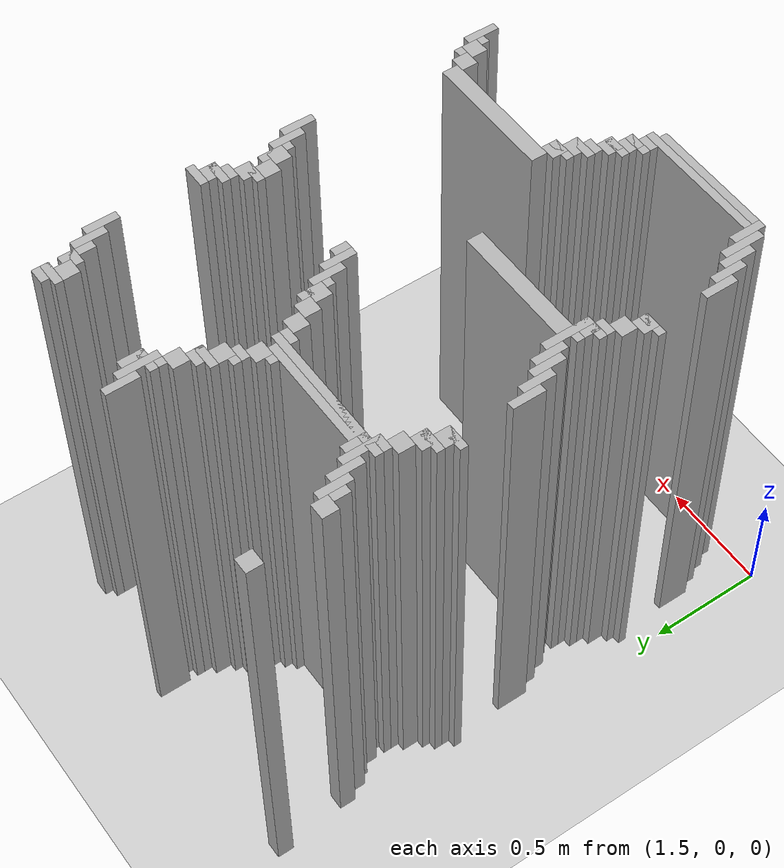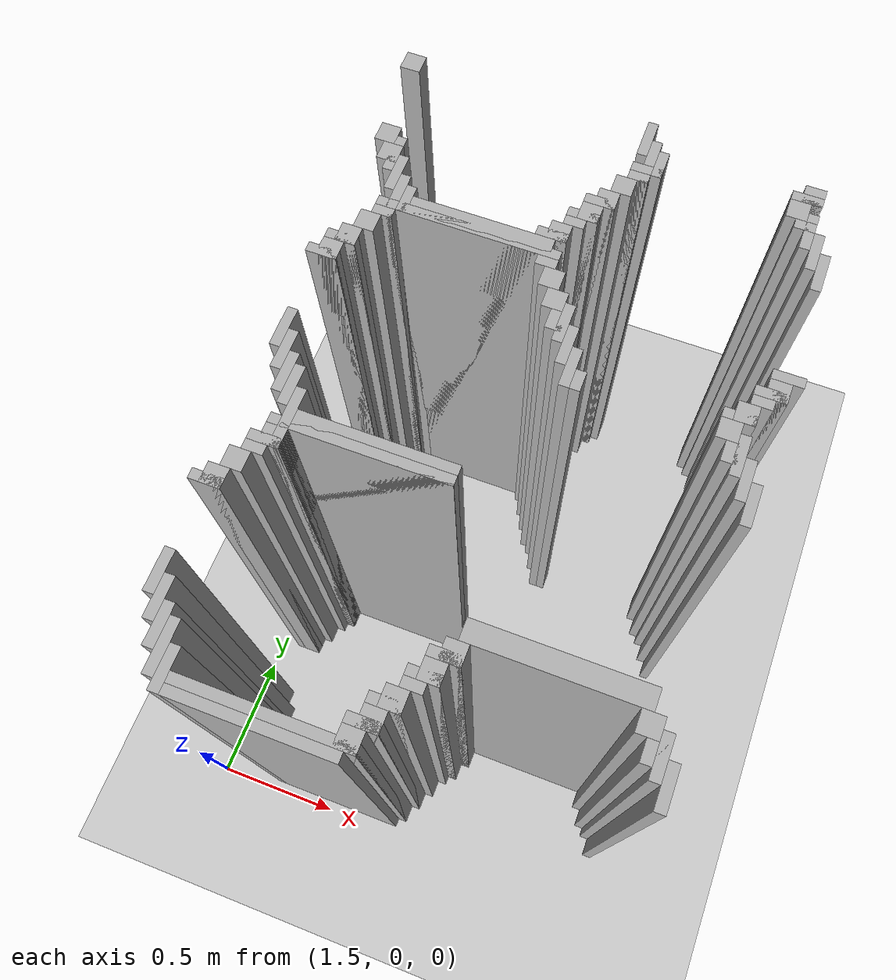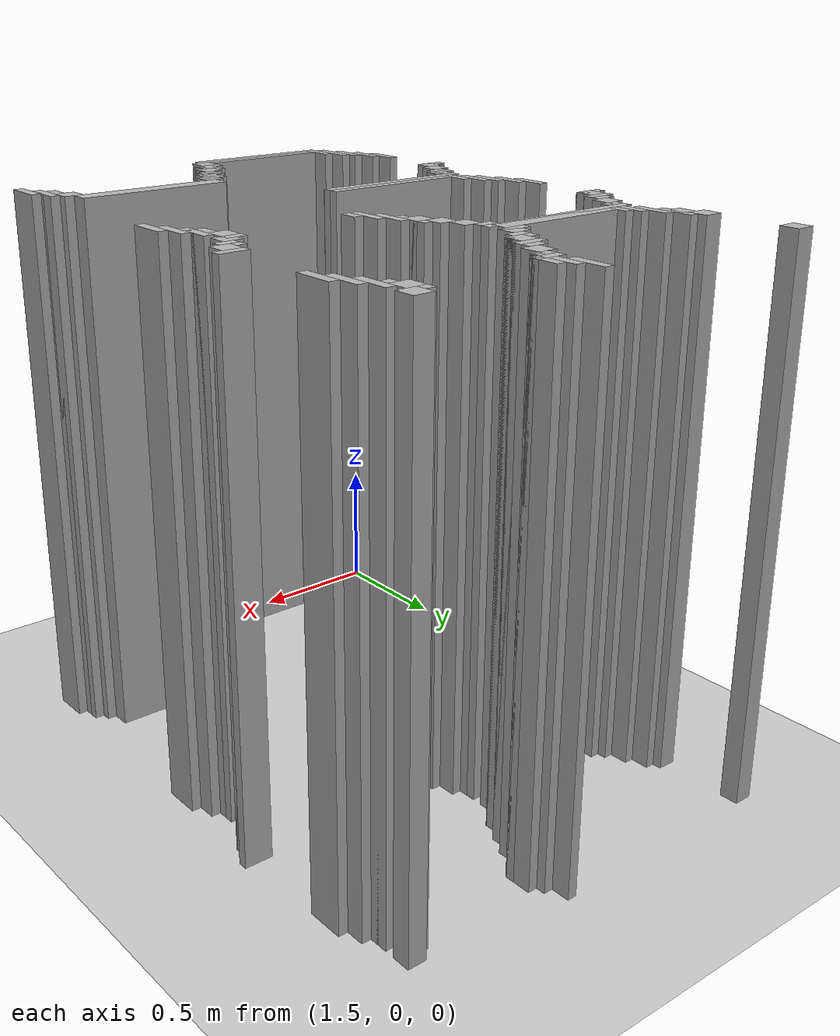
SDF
<sdf version="1.6">
 <world name="slam_world">
  <model name="ground_plane">
   <static>true</static>
   <link name="link">
    <collision name="collision">
     <geometry><plane><normal>0 0 1</normal><size>100 100</size></plane></geometry>
    </collision>
    <visual name="visual">
     <geometry><plane><normal>0 0 1</normal><size>100 100</size></plane></geometry>
     <material>
      <ambient>0.8 0.8 0.8 1</ambient>
      <diffuse>0.8 0.8 0.8 1</diffuse>
      <specular>0.8 0.8 0.8 1</specular>
     </material>
    </visual>
   </link>
  </model>
  <model name="wall_4967">
   <static>true</static>
   <pose>1.6009280742459395 2.296983758700696 1.0 0 0 0</pose>
   <link name="link">
    <collision name="collision">
     <geometry><box><size>0.06960556844547564 0.06960556844547564 2.0</size></box></geometry>
    </collision>
    <visual name="visual">
     <geometry><box><size>0.06960556844547564 0.06960556844547564 2.0</size></box></geometry>
     <material><ambient>0.5 0.5 0.5 1</ambient><diffuse>0.7 0.7 0.7 1</diffuse></material>
    </visual>
   </link>
  </model>
  <model name="wall_4968">
   <static>true</static>
   <pose>2.453596287703016 2.262180974477958 1.0 0 0 0</pose>
   <link name="link">
    <collision name="collision">
     <geometry><box><size>0.03480278422273782 0.13921113689095127 2.0</size></box></geometry>
    </collision>
    <visual name="visual">
     <geometry><box><size>0.03480278422273782 0.13921113689095127 2.0</size></box></geometry>
     <material><ambient>0.5 0.5 0.5 1</ambient><diffuse>0.7 0.7 0.7 1</diffuse></material>
    </visual>
   </link>
  </model>
  <model name="wall_4981">
   <static>true</static>
   <pose>2.488399071925754 2.1751740139211138 1.0 0 0 0</pose>
   <link name="link">
    <collision name="collision">
     <geometry><box><size>0.03480278422273782 0.17401392111368907 2.0</size></box></geometry>
    </collision>
    <visual name="visual">
     <geometry><box><size>0.03480278422273782 0.17401392111368907 2.0</size></box></geometry>
     <material><ambient>0.5 0.5 0.5 1</ambient><diffuse>0.7 0.7 0.7 1</diffuse></material>
    </visual>
   </link>
  </model>
  <model name="wall_4982">
   <static>true</static>
   <pose>3.02784222737819 2.2273781902552203 1.0 0 0 0</pose>
   <link name="link">
    <collision name="collision">
     <geometry><box><size>0.06960556844547564 0.06960556844547564 2.0</size></box></geometry>
    </collision>
    <visual name="visual">
     <geometry><box><size>0.06960556844547564 0.06960556844547564 2.0</size></box></geometry>
     <material><ambient>0.5 0.5 0.5 1</ambient><diffuse>0.7 0.7 0.7 1</diffuse></material>
    </visual>
   </link>
  </model>
  <model name="wall_4994">
   <static>true</static>
   <pose>2.523201856148492 2.1751740139211138 1.0 0 0 0</pose>
   <link name="link">
    <collision name="collision">
     <geometry><box><size>0.03480278422273782 0.10440835266821345 2.0</size></box></geometry>
    </collision>
    <visual name="visual">
     <geometry><box><size>0.03480278422273782 0.10440835266821345 2.0</size></box></geometry>
     <material><ambient>0.5 0.5 0.5 1</ambient><diffuse>0.7 0.7 0.7 1</diffuse></material>
    </visual>
   </link>
  </model>
  <model name="wall_4995">
   <static>true</static>
   <pose>3.010440835266821 2.2099767981438516 1.0 0 0 0</pose>
   <link name="link">
    <collision name="collision">
     <geometry><box><size>0.10440835266821345 0.03480278422273782 2.0</size></box></geometry>
    </collision>
    <visual name="visual">
     <geometry><box><size>0.10440835266821345 0.03480278422273782 2.0</size></box></geometry>
     <material><ambient>0.5 0.5 0.5 1</ambient><diffuse>0.7 0.7 0.7 1</diffuse></material>
    </visual>
   </link>
  </model>
  <model name="wall_5006">
   <static>true</static>
   <pose>2.9930394431554523 2.1577726218097446 1.0 0 0 0</pose>
   <link name="link">
    <collision name="collision">
     <geometry><box><size>0.06960556844547564 0.06960556844547564 2.0</size></box></geometry>
    </collision>
    <visual name="visual">
     <geometry><box><size>0.06960556844547564 0.06960556844547564 2.0</size></box></geometry>
     <material><ambient>0.5 0.5 0.5 1</ambient><diffuse>0.7 0.7 0.7 1</diffuse></material>
    </visual>
   </link>
  </model>
  <model name="wall_5018">
   <static>true</static>
   <pose>2.488399071925754 2.140371229698376 1.0 0 0 0</pose>
   <link name="link">
    <collision name="collision">
     <geometry><box><size>0.10440835266821345 0.03480278422273782 2.0</size></box></geometry>
    </collision>
    <visual name="visual">
     <geometry><box><size>0.10440835266821345 0.03480278422273782 2.0</size></box></geometry>
     <material><ambient>0.5 0.5 0.5 1</ambient><diffuse>0.7 0.7 0.7 1</diffuse></material>
    </visual>
   </link>
  </model>
  <model name="wall_5019">
   <static>true</static>
   <pose>3.045243619489559 2.088167053364269 1.0 0 0 0</pose>
   <link name="link">
    <collision name="collision">
     <geometry><box><size>0.03480278422273782 0.13921113689095127 2.0</size></box></geometry>
    </collision>
    <visual name="visual">
     <geometry><box><size>0.03480278422273782 0.13921113689095127 2.0</size></box></geometry>
     <material><ambient>0.5 0.5 0.5 1</ambient><diffuse>0.7 0.7 0.7 1</diffuse></material>
    </visual>
   </link>
  </model>
  <model name="wall_5034">
   <static>true</static>
   <pose>2.470997679814385 2.105568445475638 1.0 0 0 0</pose>
   <link name="link">
    <collision name="collision">
     <geometry><box><size>0.06960556844547564 0.03480278422273782 2.0</size></box></geometry>
    </collision>
    <visual name="visual">
     <geometry><box><size>0.06960556844547564 0.03480278422273782 2.0</size></box></geometry>
     <material><ambient>0.5 0.5 0.5 1</ambient><diffuse>0.7 0.7 0.7 1</diffuse></material>
    </visual>
   </link>
  </model>
  <model name="wall_5035">
   <static>true</static>
   <pose>3.02784222737819 2.105568445475638 1.0 0 0 0</pose>
   <link name="link">
    <collision name="collision">
     <geometry><box><size>0.06960556844547564 0.03480278422273782 2.0</size></box></geometry>
    </collision>
    <visual name="visual">
     <geometry><box><size>0.06960556844547564 0.03480278422273782 2.0</size></box></geometry>
     <material><ambient>0.5 0.5 0.5 1</ambient><diffuse>0.7 0.7 0.7 1</diffuse></material>
    </visual>
   </link>
  </model>
  <model name="wall_5047">
   <static>true</static>
   <pose>2.436194895591647 2.053364269141531 1.0 0 0 0</pose>
   <link name="link">
    <collision name="collision">
     <geometry><box><size>0.06960556844547564 0.06960556844547564 2.0</size></box></geometry>
    </collision>
    <visual name="visual">
     <geometry><box><size>0.06960556844547564 0.06960556844547564 2.0</size></box></geometry>
     <material><ambient>0.5 0.5 0.5 1</ambient><diffuse>0.7 0.7 0.7 1</diffuse></material>
    </visual>
   </link>
  </model>
  <model name="wall_5048">
   <static>true</static>
   <pose>3.0800464037122968 2.0185614849187936 1.0 0 0 0</pose>
   <link name="link">
    <collision name="collision">
     <geometry><box><size>0.03480278422273782 0.13921113689095127 2.0</size></box></geometry>
    </collision>
    <visual name="visual">
     <geometry><box><size>0.03480278422273782 0.13921113689095127 2.0</size></box></geometry>
     <material><ambient>0.5 0.5 0.5 1</ambient><diffuse>0.7 0.7 0.7 1</diffuse></material>
    </visual>
   </link>
  </model>
  <model name="wall_5059">
   <static>true</static>
   <pose>1.6357308584686774 1.9837587006960555 1.0 0 0 0</pose>
   <link name="link">
    <collision name="collision">
     <geometry><box><size>0.06960556844547564 0.06960556844547564 2.0</size></box></geometry>
    </collision>
    <visual name="visual">
     <geometry><box><size>0.06960556844547564 0.06960556844547564 2.0</size></box></geometry>
     <material><ambient>0.5 0.5 0.5 1</ambient><diffuse>0.7 0.7 0.7 1</diffuse></material>
    </visual>
   </link>
  </model>
  <model name="wall_5060">
   <static>true</static>
   <pose>2.4013921113689096 1.9837587006960555 1.0 0 0 0</pose>
   <link name="link">
    <collision name="collision">
     <geometry><box><size>0.06960556844547564 0.06960556844547564 2.0</size></box></geometry>
    </collision>
    <visual name="visual">
     <geometry><box><size>0.06960556844547564 0.06960556844547564 2.0</size></box></geometry>
     <material><ambient>0.5 0.5 0.5 1</ambient><diffuse>0.7 0.7 0.7 1</diffuse></material>
    </visual>
   </link>
  </model>
  <model name="wall_5061">
   <static>true</static>
   <pose>3.1148491879350346 1.948955916473318 1.0 0 0 0</pose>
   <link name="link">
    <collision name="collision">
     <geometry><box><size>0.03480278422273782 0.13921113689095127 2.0</size></box></geometry>
    </collision>
    <visual name="visual">
     <geometry><box><size>0.03480278422273782 0.13921113689095127 2.0</size></box></geometry>
     <material><ambient>0.5 0.5 0.5 1</ambient><diffuse>0.7 0.7 0.7 1</diffuse></material>
    </visual>
   </link>
  </model>
  <model name="wall_5072">
   <static>true</static>
   <pose>1.6879350348027842 1.91415313225058 1.0 0 0 0</pose>
   <link name="link">
    <collision name="collision">
     <geometry><box><size>0.03480278422273782 0.13921113689095127 2.0</size></box></geometry>
    </collision>
    <visual name="visual">
     <geometry><box><size>0.03480278422273782 0.13921113689095127 2.0</size></box></geometry>
     <material><ambient>0.5 0.5 0.5 1</ambient><diffuse>0.7 0.7 0.7 1</diffuse></material>
    </visual>
   </link>
  </model>
  <model name="wall_5073">
   <static>true</static>
   <pose>2.3839907192575405 1.9663573085846866 1.0 0 0 0</pose>
   <link name="link">
    <collision name="collision">
     <geometry><box><size>0.10440835266821345 0.03480278422273782 2.0</size></box></geometry>
    </collision>
    <visual name="visual">
     <geometry><box><size>0.10440835266821345 0.03480278422273782 2.0</size></box></geometry>
     <material><ambient>0.5 0.5 0.5 1</ambient><diffuse>0.7 0.7 0.7 1</diffuse></material>
    </visual>
   </link>
  </model>
  <model name="wall_5084">
   <static>true</static>
   <pose>1.6705336426914152 1.91415313225058 1.0 0 0 0</pose>
   <link name="link">
    <collision name="collision">
     <geometry><box><size>0.06960556844547564 0.06960556844547564 2.0</size></box></geometry>
    </collision>
    <visual name="visual">
     <geometry><box><size>0.06960556844547564 0.06960556844547564 2.0</size></box></geometry>
     <material><ambient>0.5 0.5 0.5 1</ambient><diffuse>0.7 0.7 0.7 1</diffuse></material>
    </visual>
   </link>
  </model>
  <model name="wall_5085">
   <static>true</static>
   <pose>2.3665893271461718 1.91415313225058 1.0 0 0 0</pose>
   <link name="link">
    <collision name="collision">
     <geometry><box><size>0.06960556844547564 0.06960556844547564 2.0</size></box></geometry>
    </collision>
    <visual name="visual">
     <geometry><box><size>0.06960556844547564 0.06960556844547564 2.0</size></box></geometry>
     <material><ambient>0.5 0.5 0.5 1</ambient><diffuse>0.7 0.7 0.7 1</diffuse></material>
    </visual>
   </link>
  </model>
  <model name="wall_5095">
   <static>true</static>
   <pose>1.722737819025522 1.8445475638051043 1.0 0 0 0</pose>
   <link name="link">
    <collision name="collision">
     <geometry><box><size>0.03480278422273782 0.13921113689095127 2.0</size></box></geometry>
    </collision>
    <visual name="visual">
     <geometry><box><size>0.03480278422273782 0.13921113689095127 2.0</size></box></geometry>
     <material><ambient>0.5 0.5 0.5 1</ambient><diffuse>0.7 0.7 0.7 1</diffuse></material>
    </visual>
   </link>
  </model>
  <model name="wall_5096">
   <static>true</static>
   <pose>2.3491879350348026 1.896751740139211 1.0 0 0 0</pose>
   <link name="link">
    <collision name="collision">
     <geometry><box><size>0.10440835266821345 0.03480278422273782 2.0</size></box></geometry>
    </collision>
    <visual name="visual">
     <geometry><box><size>0.10440835266821345 0.03480278422273782 2.0</size></box></geometry>
     <material><ambient>0.5 0.5 0.5 1</ambient><diffuse>0.7 0.7 0.7 1</diffuse></material>
    </visual>
   </link>
  </model>
  <model name="wall_5107">
   <static>true</static>
   <pose>2.331786542923434 1.8619489559164732 1.0 0 0 0</pose>
   <link name="link">
    <collision name="collision">
     <geometry><box><size>0.06960556844547564 0.03480278422273782 2.0</size></box></geometry>
    </collision>
    <visual name="visual">
     <geometry><box><size>0.06960556844547564 0.03480278422273782 2.0</size></box></geometry>
     <material><ambient>0.5 0.5 0.5 1</ambient><diffuse>0.7 0.7 0.7 1</diffuse></material>
    </visual>
   </link>
  </model>
  <model name="wall_5114">
   <static>true</static>
   <pose>1.75754060324826 1.75754060324826 1.0 0 0 0</pose>
   <link name="link">
    <collision name="collision">
     <geometry><box><size>0.03480278422273782 0.17401392111368907 2.0</size></box></geometry>
    </collision>
    <visual name="visual">
     <geometry><box><size>0.03480278422273782 0.17401392111368907 2.0</size></box></geometry>
     <material><ambient>0.5 0.5 0.5 1</ambient><diffuse>0.7 0.7 0.7 1</diffuse></material>
    </visual>
   </link>
  </model>
  <model name="wall_5115">
   <static>true</static>
   <pose>2.296983758700696 1.8097447795823665 1.0 0 0 0</pose>
   <link name="link">
    <collision name="collision">
     <geometry><box><size>0.06960556844547564 0.06960556844547564 2.0</size></box></geometry>
    </collision>
    <visual name="visual">
     <geometry><box><size>0.06960556844547564 0.06960556844547564 2.0</size></box></geometry>
     <material><ambient>0.5 0.5 0.5 1</ambient><diffuse>0.7 0.7 0.7 1</diffuse></material>
    </visual>
   </link>
  </model>
  <model name="wall_5127">
   <static>true</static>
   <pose>1.7923433874709975 1.75754060324826 1.0 0 0 0</pose>
   <link name="link">
    <collision name="collision">
     <geometry><box><size>0.03480278422273782 0.10440835266821345 2.0</size></box></geometry>
    </collision>
    <visual name="visual">
     <geometry><box><size>0.03480278422273782 0.10440835266821345 2.0</size></box></geometry>
     <material><ambient>0.5 0.5 0.5 1</ambient><diffuse>0.7 0.7 0.7 1</diffuse></material>
    </visual>
   </link>
  </model>
  <model name="wall_5128">
   <static>true</static>
   <pose>2.279582366589327 1.7923433874709975 1.0 0 0 0</pose>
   <link name="link">
    <collision name="collision">
     <geometry><box><size>0.10440835266821345 0.03480278422273782 2.0</size></box></geometry>
    </collision>
    <visual name="visual">
     <geometry><box><size>0.10440835266821345 0.03480278422273782 2.0</size></box></geometry>
     <material><ambient>0.5 0.5 0.5 1</ambient><diffuse>0.7 0.7 0.7 1</diffuse></material>
    </visual>
   </link>
  </model>
  <model name="wall_5139">
   <static>true</static>
   <pose>2.053364269141531 1.740139211136891 1.0 0 0 0</pose>
   <link name="link">
    <collision name="collision">
     <geometry><box><size>0.4872389791183295 0.06960556844547564 2.0</size></box></geometry>
    </collision>
    <visual name="visual">
     <geometry><box><size>0.4872389791183295 0.06960556844547564 2.0</size></box></geometry>
     <material><ambient>0.5 0.5 0.5 1</ambient><diffuse>0.7 0.7 0.7 1</diffuse></material>
    </visual>
   </link>
  </model>
  <model name="wall_5150">
   <static>true</static>
   <pose>2.0185614849187936 1.722737819025522 1.0 0 0 0</pose>
   <link name="link">
    <collision name="collision">
     <geometry><box><size>0.6264501160092807 0.03480278422273782 2.0</size></box></geometry>
    </collision>
    <visual name="visual">
     <geometry><box><size>0.6264501160092807 0.03480278422273782 2.0</size></box></geometry>
     <material><ambient>0.5 0.5 0.5 1</ambient><diffuse>0.7 0.7 0.7 1</diffuse></material>
    </visual>
   </link>
  </model>
  <model name="wall_5163">
   <static>true</static>
   <pose>1.740139211136891 1.6879350348027842 1.0 0 0 0</pose>
   <link name="link">
    <collision name="collision">
     <geometry><box><size>0.06960556844547564 0.03480278422273782 2.0</size></box></geometry>
    </collision>
    <visual name="visual">
     <geometry><box><size>0.06960556844547564 0.03480278422273782 2.0</size></box></geometry>
     <material><ambient>0.5 0.5 0.5 1</ambient><diffuse>0.7 0.7 0.7 1</diffuse></material>
    </visual>
   </link>
  </model>
  <model name="wall_5164">
   <static>true</static>
   <pose>2.296983758700696 1.6879350348027842 1.0 0 0 0</pose>
   <link name="link">
    <collision name="collision">
     <geometry><box><size>0.06960556844547564 0.03480278422273782 2.0</size></box></geometry>
    </collision>
    <visual name="visual">
     <geometry><box><size>0.06960556844547564 0.03480278422273782 2.0</size></box></geometry>
     <material><ambient>0.5 0.5 0.5 1</ambient><diffuse>0.7 0.7 0.7 1</diffuse></material>
    </visual>
   </link>
  </model>
  <model name="wall_5179">
   <static>true</static>
   <pose>1.705336426914153 1.6357308584686774 1.0 0 0 0</pose>
   <link name="link">
    <collision name="collision">
     <geometry><box><size>0.06960556844547564 0.06960556844547564 2.0</size></box></geometry>
    </collision>
    <visual name="visual">
     <geometry><box><size>0.06960556844547564 0.06960556844547564 2.0</size></box></geometry>
     <material><ambient>0.5 0.5 0.5 1</ambient><diffuse>0.7 0.7 0.7 1</diffuse></material>
    </visual>
   </link>
  </model>
  <model name="wall_5180">
   <static>true</static>
   <pose>2.331786542923434 1.6357308584686774 1.0 0 0 0</pose>
   <link name="link">
    <collision name="collision">
     <geometry><box><size>0.06960556844547564 0.06960556844547564 2.0</size></box></geometry>
    </collision>
    <visual name="visual">
     <geometry><box><size>0.06960556844547564 0.06960556844547564 2.0</size></box></geometry>
     <material><ambient>0.5 0.5 0.5 1</ambient><diffuse>0.7 0.7 0.7 1</diffuse></material>
    </visual>
   </link>
  </model>
  <model name="wall_5195">
   <static>true</static>
   <pose>1.6705336426914152 1.5661252900232019 1.0 0 0 0</pose>
   <link name="link">
    <collision name="collision">
     <geometry><box><size>0.06960556844547564 0.06960556844547564 2.0</size></box></geometry>
    </collision>
    <visual name="visual">
     <geometry><box><size>0.06960556844547564 0.06960556844547564 2.0</size></box></geometry>
     <material><ambient>0.5 0.5 0.5 1</ambient><diffuse>0.7 0.7 0.7 1</diffuse></material>
    </visual>
   </link>
  </model>
  <model name="wall_5196">
   <static>true</static>
   <pose>2.3665893271461718 1.5661252900232019 1.0 0 0 0</pose>
   <link name="link">
    <collision name="collision">
     <geometry><box><size>0.06960556844547564 0.06960556844547564 2.0</size></box></geometry>
    </collision>
    <visual name="visual">
     <geometry><box><size>0.06960556844547564 0.06960556844547564 2.0</size></box></geometry>
     <material><ambient>0.5 0.5 0.5 1</ambient><diffuse>0.7 0.7 0.7 1</diffuse></material>
    </visual>
   </link>
  </model>
  <model name="wall_5211">
   <static>true</static>
   <pose>1.6531322505800463 1.548723897911833 1.0 0 0 0</pose>
   <link name="link">
    <collision name="collision">
     <geometry><box><size>0.10440835266821345 0.03480278422273782 2.0</size></box></geometry>
    </collision>
    <visual name="visual">
     <geometry><box><size>0.10440835266821345 0.03480278422273782 2.0</size></box></geometry>
     <material><ambient>0.5 0.5 0.5 1</ambient><diffuse>0.7 0.7 0.7 1</diffuse></material>
    </visual>
   </link>
  </model>
  <model name="wall_5212">
   <static>true</static>
   <pose>2.4187935034802783 1.4965197215777262 1.0 0 0 0</pose>
   <link name="link">
    <collision name="collision">
     <geometry><box><size>0.03480278422273782 0.13921113689095127 2.0</size></box></geometry>
    </collision>
    <visual name="visual">
     <geometry><box><size>0.03480278422273782 0.13921113689095127 2.0</size></box></geometry>
     <material><ambient>0.5 0.5 0.5 1</ambient><diffuse>0.7 0.7 0.7 1</diffuse></material>
    </visual>
   </link>
  </model>
  <model name="wall_5213">
   <static>true</static>
   <pose>3.1148491879350346 1.548723897911833 1.0 0 0 0</pose>
   <link name="link">
    <collision name="collision">
     <geometry><box><size>0.10440835266821345 0.03480278422273782 2.0</size></box></geometry>
    </collision>
    <visual name="visual">
     <geometry><box><size>0.10440835266821345 0.03480278422273782 2.0</size></box></geometry>
     <material><ambient>0.5 0.5 0.5 1</ambient><diffuse>0.7 0.7 0.7 1</diffuse></material>
    </visual>
   </link>
  </model>
  <model name="wall_5227">
   <static>true</static>
   <pose>1.6357308584686774 1.4965197215777262 1.0 0 0 0</pose>
   <link name="link">
    <collision name="collision">
     <geometry><box><size>0.06960556844547564 0.06960556844547564 2.0</size></box></geometry>
    </collision>
    <visual name="visual">
     <geometry><box><size>0.06960556844547564 0.06960556844547564 2.0</size></box></geometry>
     <material><ambient>0.5 0.5 0.5 1</ambient><diffuse>0.7 0.7 0.7 1</diffuse></material>
    </visual>
   </link>
  </model>
  <model name="wall_5228">
   <static>true</static>
   <pose>2.4013921113689096 1.4965197215777262 1.0 0 0 0</pose>
   <link name="link">
    <collision name="collision">
     <geometry><box><size>0.06960556844547564 0.06960556844547564 2.0</size></box></geometry>
    </collision>
    <visual name="visual">
     <geometry><box><size>0.06960556844547564 0.06960556844547564 2.0</size></box></geometry>
     <material><ambient>0.5 0.5 0.5 1</ambient><diffuse>0.7 0.7 0.7 1</diffuse></material>
    </visual>
   </link>
  </model>
  <model name="wall_5229">
   <static>true</static>
   <pose>3.097447795823666 1.4965197215777262 1.0 0 0 0</pose>
   <link name="link">
    <collision name="collision">
     <geometry><box><size>0.06960556844547564 0.06960556844547564 2.0</size></box></geometry>
    </collision>
    <visual name="visual">
     <geometry><box><size>0.06960556844547564 0.06960556844547564 2.0</size></box></geometry>
     <material><ambient>0.5 0.5 0.5 1</ambient><diffuse>0.7 0.7 0.7 1</diffuse></material>
    </visual>
   </link>
  </model>
  <model name="wall_5240">
   <static>true</static>
   <pose>1.6183294663573085 1.4791183294663572 1.0 0 0 0</pose>
   <link name="link">
    <collision name="collision">
     <geometry><box><size>0.10440835266821345 0.03480278422273782 2.0</size></box></geometry>
    </collision>
    <visual name="visual">
     <geometry><box><size>0.10440835266821345 0.03480278422273782 2.0</size></box></geometry>
     <material><ambient>0.5 0.5 0.5 1</ambient><diffuse>0.7 0.7 0.7 1</diffuse></material>
    </visual>
   </link>
  </model>
  <model name="wall_5241">
   <static>true</static>
   <pose>2.453596287703016 1.4269141531322505 1.0 0 0 0</pose>
   <link name="link">
    <collision name="collision">
     <geometry><box><size>0.03480278422273782 0.13921113689095127 2.0</size></box></geometry>
    </collision>
    <visual name="visual">
     <geometry><box><size>0.03480278422273782 0.13921113689095127 2.0</size></box></geometry>
     <material><ambient>0.5 0.5 0.5 1</ambient><diffuse>0.7 0.7 0.7 1</diffuse></material>
    </visual>
   </link>
  </model>
  <model name="wall_5242">
   <static>true</static>
   <pose>3.0800464037122968 1.4791183294663572 1.0 0 0 0</pose>
   <link name="link">
    <collision name="collision">
     <geometry><box><size>0.10440835266821345 0.03480278422273782 2.0</size></box></geometry>
    </collision>
    <visual name="visual">
     <geometry><box><size>0.10440835266821345 0.03480278422273782 2.0</size></box></geometry>
     <material><ambient>0.5 0.5 0.5 1</ambient><diffuse>0.7 0.7 0.7 1</diffuse></material>
    </visual>
   </link>
  </model>
  <model name="wall_5257">
   <static>true</static>
   <pose>3.062645011600928 1.4443155452436194 1.0 0 0 0</pose>
   <link name="link">
    <collision name="collision">
     <geometry><box><size>0.06960556844547564 0.03480278422273782 2.0</size></box></geometry>
    </collision>
    <visual name="visual">
     <geometry><box><size>0.06960556844547564 0.03480278422273782 2.0</size></box></geometry>
     <material><ambient>0.5 0.5 0.5 1</ambient><diffuse>0.7 0.7 0.7 1</diffuse></material>
    </visual>
   </link>
  </model>
  <model name="wall_5267">
   <static>true</static>
   <pose>2.488399071925754 1.357308584686775 1.0 0 0 0</pose>
   <link name="link">
    <collision name="collision">
     <geometry><box><size>0.03480278422273782 0.13921113689095127 2.0</size></box></geometry>
    </collision>
    <visual name="visual">
     <geometry><box><size>0.03480278422273782 0.13921113689095127 2.0</size></box></geometry>
     <material><ambient>0.5 0.5 0.5 1</ambient><diffuse>0.7 0.7 0.7 1</diffuse></material>
    </visual>
   </link>
  </model>
  <model name="wall_5268">
   <static>true</static>
   <pose>3.02784222737819 1.3921113689095126 1.0 0 0 0</pose>
   <link name="link">
    <collision name="collision">
     <geometry><box><size>0.06960556844547564 0.06960556844547564 2.0</size></box></geometry>
    </collision>
    <visual name="visual">
     <geometry><box><size>0.06960556844547564 0.06960556844547564 2.0</size></box></geometry>
     <material><ambient>0.5 0.5 0.5 1</ambient><diffuse>0.7 0.7 0.7 1</diffuse></material>
    </visual>
   </link>
  </model>
  <model name="wall_5282">
   <static>true</static>
   <pose>3.010440835266821 1.3747099767981439 1.0 0 0 0</pose>
   <link name="link">
    <collision name="collision">
     <geometry><box><size>0.10440835266821345 0.03480278422273782 2.0</size></box></geometry>
    </collision>
    <visual name="visual">
     <geometry><box><size>0.10440835266821345 0.03480278422273782 2.0</size></box></geometry>
     <material><ambient>0.5 0.5 0.5 1</ambient><diffuse>0.7 0.7 0.7 1</diffuse></material>
    </visual>
   </link>
  </model>
  <model name="wall_5295">
   <static>true</static>
   <pose>2.523201856148492 1.322505800464037 1.0 0 0 0</pose>
   <link name="link">
    <collision name="collision">
     <geometry><box><size>0.03480278422273782 0.06960556844547564 2.0</size></box></geometry>
    </collision>
    <visual name="visual">
     <geometry><box><size>0.03480278422273782 0.06960556844547564 2.0</size></box></geometry>
     <material><ambient>0.5 0.5 0.5 1</ambient><diffuse>0.7 0.7 0.7 1</diffuse></material>
    </visual>
   </link>
  </model>
  <model name="wall_5296">
   <static>true</static>
   <pose>2.9930394431554523 1.322505800464037 1.0 0 0 0</pose>
   <link name="link">
    <collision name="collision">
     <geometry><box><size>0.06960556844547564 0.06960556844547564 2.0</size></box></geometry>
    </collision>
    <visual name="visual">
     <geometry><box><size>0.06960556844547564 0.06960556844547564 2.0</size></box></geometry>
     <material><ambient>0.5 0.5 0.5 1</ambient><diffuse>0.7 0.7 0.7 1</diffuse></material>
    </visual>
   </link>
  </model>
  <model name="wall_5308">
   <static>true</static>
   <pose>3.045243619489559 1.2529002320185614 1.0 0 0 0</pose>
   <link name="link">
    <collision name="collision">
     <geometry><box><size>0.03480278422273782 0.13921113689095127 2.0</size></box></geometry>
    </collision>
    <visual name="visual">
     <geometry><box><size>0.03480278422273782 0.13921113689095127 2.0</size></box></geometry>
     <material><ambient>0.5 0.5 0.5 1</ambient><diffuse>0.7 0.7 0.7 1</diffuse></material>
    </visual>
   </link>
  </model>
  <model name="wall_5319">
   <static>true</static>
   <pose>3.02784222737819 1.2529002320185614 1.0 0 0 0</pose>
   <link name="link">
    <collision name="collision">
     <geometry><box><size>0.06960556844547564 0.06960556844547564 2.0</size></box></geometry>
    </collision>
    <visual name="visual">
     <geometry><box><size>0.06960556844547564 0.06960556844547564 2.0</size></box></geometry>
     <material><ambient>0.5 0.5 0.5 1</ambient><diffuse>0.7 0.7 0.7 1</diffuse></material>
    </visual>
   </link>
  </model>
  <model name="wall_5332">
   <static>true</static>
   <pose>1.6183294663573085 1.1832946635730859 1.0 0 0 0</pose>
   <link name="link">
    <collision name="collision">
     <geometry><box><size>0.03480278422273782 0.13921113689095127 2.0</size></box></geometry>
    </collision>
    <visual name="visual">
     <geometry><box><size>0.03480278422273782 0.13921113689095127 2.0</size></box></geometry>
     <material><ambient>0.5 0.5 0.5 1</ambient><diffuse>0.7 0.7 0.7 1</diffuse></material>
    </visual>
   </link>
  </model>
  <model name="wall_5333">
   <static>true</static>
   <pose>3.0800464037122968 1.1832946635730859 1.0 0 0 0</pose>
   <link name="link">
    <collision name="collision">
     <geometry><box><size>0.03480278422273782 0.13921113689095127 2.0</size></box></geometry>
    </collision>
    <visual name="visual">
     <geometry><box><size>0.03480278422273782 0.13921113689095127 2.0</size></box></geometry>
     <material><ambient>0.5 0.5 0.5 1</ambient><diffuse>0.7 0.7 0.7 1</diffuse></material>
    </visual>
   </link>
  </model>
  <model name="wall_5355">
   <static>true</static>
   <pose>1.6531322505800463 1.1136890951276102 1.0 0 0 0</pose>
   <link name="link">
    <collision name="collision">
     <geometry><box><size>0.03480278422273782 0.13921113689095127 2.0</size></box></geometry>
    </collision>
    <visual name="visual">
     <geometry><box><size>0.03480278422273782 0.13921113689095127 2.0</size></box></geometry>
     <material><ambient>0.5 0.5 0.5 1</ambient><diffuse>0.7 0.7 0.7 1</diffuse></material>
    </visual>
   </link>
  </model>
  <model name="wall_5356">
   <static>true</static>
   <pose>3.1148491879350346 1.1136890951276102 1.0 0 0 0</pose>
   <link name="link">
    <collision name="collision">
     <geometry><box><size>0.03480278422273782 0.13921113689095127 2.0</size></box></geometry>
    </collision>
    <visual name="visual">
     <geometry><box><size>0.03480278422273782 0.13921113689095127 2.0</size></box></geometry>
     <material><ambient>0.5 0.5 0.5 1</ambient><diffuse>0.7 0.7 0.7 1</diffuse></material>
    </visual>
   </link>
  </model>
  <model name="wall_5369">
   <static>true</static>
   <pose>1.6879350348027842 1.0440835266821344 1.0 0 0 0</pose>
   <link name="link">
    <collision name="collision">
     <geometry><box><size>0.03480278422273782 0.13921113689095127 2.0</size></box></geometry>
    </collision>
    <visual name="visual">
     <geometry><box><size>0.03480278422273782 0.13921113689095127 2.0</size></box></geometry>
     <material><ambient>0.5 0.5 0.5 1</ambient><diffuse>0.7 0.7 0.7 1</diffuse></material>
    </visual>
   </link>
  </model>
  <model name="wall_5383">
   <static>true</static>
   <pose>1.722737819025522 1.0092807424593968 1.0 0 0 0</pose>
   <link name="link">
    <collision name="collision">
     <geometry><box><size>0.03480278422273782 0.13921113689095127 2.0</size></box></geometry>
    </collision>
    <visual name="visual">
     <geometry><box><size>0.03480278422273782 0.13921113689095127 2.0</size></box></geometry>
     <material><ambient>0.5 0.5 0.5 1</ambient><diffuse>0.7 0.7 0.7 1</diffuse></material>
    </visual>
   </link>
  </model>
  <model name="wall_5403">
   <static>true</static>
   <pose>1.75754060324826 0.9048723897911832 1.0 0 0 0</pose>
   <link name="link">
    <collision name="collision">
     <geometry><box><size>0.03480278422273782 0.2088167053364269 2.0</size></box></geometry>
    </collision>
    <visual name="visual">
     <geometry><box><size>0.03480278422273782 0.2088167053364269 2.0</size></box></geometry>
     <material><ambient>0.5 0.5 0.5 1</ambient><diffuse>0.7 0.7 0.7 1</diffuse></material>
    </visual>
   </link>
  </model>
  <model name="wall_5423">
   <static>true</static>
   <pose>2.0359628770301623 0.9048723897911832 1.0 0 0 0</pose>
   <link name="link">
    <collision name="collision">
     <geometry><box><size>0.5220417633410672 0.06960556844547564 2.0</size></box></geometry>
    </collision>
    <visual name="visual">
     <geometry><box><size>0.5220417633410672 0.06960556844547564 2.0</size></box></geometry>
     <material><ambient>0.5 0.5 0.5 1</ambient><diffuse>0.7 0.7 0.7 1</diffuse></material>
    </visual>
   </link>
  </model>
  <model name="wall_5438">
   <static>true</static>
   <pose>2.0011600928074245 0.8874709976798143 1.0 0 0 0</pose>
   <link name="link">
    <collision name="collision">
     <geometry><box><size>0.5916473317865429 0.03480278422273782 2.0</size></box></geometry>
    </collision>
    <visual name="visual">
     <geometry><box><size>0.5916473317865429 0.03480278422273782 2.0</size></box></geometry>
     <material><ambient>0.5 0.5 0.5 1</ambient><diffuse>0.7 0.7 0.7 1</diffuse></material>
    </visual>
   </link>
  </model>
  <model name="wall_5448">
   <static>true</static>
   <pose>1.740139211136891 0.8352668213457076 1.0 0 0 0</pose>
   <link name="link">
    <collision name="collision">
     <geometry><box><size>0.06960556844547564 0.06960556844547564 2.0</size></box></geometry>
    </collision>
    <visual name="visual">
     <geometry><box><size>0.06960556844547564 0.06960556844547564 2.0</size></box></geometry>
     <material><ambient>0.5 0.5 0.5 1</ambient><diffuse>0.7 0.7 0.7 1</diffuse></material>
    </visual>
   </link>
  </model>
  <model name="wall_5458">
   <static>true</static>
   <pose>1.722737819025522 0.8178654292343387 1.0 0 0 0</pose>
   <link name="link">
    <collision name="collision">
     <geometry><box><size>0.10440835266821345 0.03480278422273782 2.0</size></box></geometry>
    </collision>
    <visual name="visual">
     <geometry><box><size>0.10440835266821345 0.03480278422273782 2.0</size></box></geometry>
     <material><ambient>0.5 0.5 0.5 1</ambient><diffuse>0.7 0.7 0.7 1</diffuse></material>
    </visual>
   </link>
  </model>
  <model name="wall_5468">
   <static>true</static>
   <pose>1.705336426914153 0.7830626450116009 1.0 0 0 0</pose>
   <link name="link">
    <collision name="collision">
     <geometry><box><size>0.06960556844547564 0.03480278422273782 2.0</size></box></geometry>
    </collision>
    <visual name="visual">
     <geometry><box><size>0.06960556844547564 0.03480278422273782 2.0</size></box></geometry>
     <material><ambient>0.5 0.5 0.5 1</ambient><diffuse>0.7 0.7 0.7 1</diffuse></material>
    </visual>
   </link>
  </model>
  <model name="wall_5474">
   <static>true</static>
   <pose>1.6705336426914152 0.7308584686774942 1.0 0 0 0</pose>
   <link name="link">
    <collision name="collision">
     <geometry><box><size>0.06960556844547564 0.06960556844547564 2.0</size></box></geometry>
    </collision>
    <visual name="visual">
     <geometry><box><size>0.06960556844547564 0.06960556844547564 2.0</size></box></geometry>
     <material><ambient>0.5 0.5 0.5 1</ambient><diffuse>0.7 0.7 0.7 1</diffuse></material>
    </visual>
   </link>
  </model>
  <model name="wall_5484">
   <static>true</static>
   <pose>1.6357308584686774 0.6612529002320185 1.0 0 0 0</pose>
   <link name="link">
    <collision name="collision">
     <geometry><box><size>0.06960556844547564 0.06960556844547564 2.0</size></box></geometry>
    </collision>
    <visual name="visual">
     <geometry><box><size>0.06960556844547564 0.06960556844547564 2.0</size></box></geometry>
     <material><ambient>0.5 0.5 0.5 1</ambient><diffuse>0.7 0.7 0.7 1</diffuse></material>
    </visual>
   </link>
  </model>
  <model name="wall_5494">
   <static>true</static>
   <pose>1.6183294663573085 0.6438515081206496 1.0 0 0 0</pose>
   <link name="link">
    <collision name="collision">
     <geometry><box><size>0.10440835266821345 0.03480278422273782 2.0</size></box></geometry>
    </collision>
    <visual name="visual">
     <geometry><box><size>0.10440835266821345 0.03480278422273782 2.0</size></box></geometry>
     <material><ambient>0.5 0.5 0.5 1</ambient><diffuse>0.7 0.7 0.7 1</diffuse></material>
    </visual>
   </link>
  </model>
  <model name="wall_5527">
   <static>true</static>
   <pose>2.7494199535962878 0.4872389791183295 1.0 0 0 0</pose>
   <link name="link">
    <collision name="collision">
     <geometry><box><size>0.5568445475638051 0.06960556844547564 2.0</size></box></geometry>
    </collision>
    <visual name="visual">
     <geometry><box><size>0.5568445475638051 0.06960556844547564 2.0</size></box></geometry>
     <material><ambient>0.5 0.5 0.5 1</ambient><diffuse>0.7 0.7 0.7 1</diffuse></material>
    </visual>
   </link>
  </model>
  <model name="wall_5539">
   <static>true</static>
   <pose>2.470997679814385 0.4176334106728538 1.0 0 0 0</pose>
   <link name="link">
    <collision name="collision">
     <geometry><box><size>0.06960556844547564 0.06960556844547564 2.0</size></box></geometry>
    </collision>
    <visual name="visual">
     <geometry><box><size>0.06960556844547564 0.06960556844547564 2.0</size></box></geometry>
     <material><ambient>0.5 0.5 0.5 1</ambient><diffuse>0.7 0.7 0.7 1</diffuse></material>
    </visual>
   </link>
  </model>
  <model name="wall_5540">
   <static>true</static>
   <pose>3.02784222737819 0.4176334106728538 1.0 0 0 0</pose>
   <link name="link">
    <collision name="collision">
     <geometry><box><size>0.06960556844547564 0.06960556844547564 2.0</size></box></geometry>
    </collision>
    <visual name="visual">
     <geometry><box><size>0.06960556844547564 0.06960556844547564 2.0</size></box></geometry>
     <material><ambient>0.5 0.5 0.5 1</ambient><diffuse>0.7 0.7 0.7 1</diffuse></material>
    </visual>
   </link>
  </model>
  <model name="wall_5558">
   <static>true</static>
   <pose>1.6183294663573085 0.34802784222737815 1.0 0 0 0</pose>
   <link name="link">
    <collision name="collision">
     <geometry><box><size>0.03480278422273782 0.13921113689095127 2.0</size></box></geometry>
    </collision>
    <visual name="visual">
     <geometry><box><size>0.03480278422273782 0.13921113689095127 2.0</size></box></geometry>
     <material><ambient>0.5 0.5 0.5 1</ambient><diffuse>0.7 0.7 0.7 1</diffuse></material>
    </visual>
   </link>
  </model>
  <model name="wall_5559">
   <static>true</static>
   <pose>2.453596287703016 0.4002320185614849 1.0 0 0 0</pose>
   <link name="link">
    <collision name="collision">
     <geometry><box><size>0.10440835266821345 0.03480278422273782 2.0</size></box></geometry>
    </collision>
    <visual name="visual">
     <geometry><box><size>0.10440835266821345 0.03480278422273782 2.0</size></box></geometry>
     <material><ambient>0.5 0.5 0.5 1</ambient><diffuse>0.7 0.7 0.7 1</diffuse></material>
    </visual>
   </link>
  </model>
  <model name="wall_5560">
   <static>true</static>
   <pose>3.0800464037122968 0.34802784222737815 1.0 0 0 0</pose>
   <link name="link">
    <collision name="collision">
     <geometry><box><size>0.03480278422273782 0.13921113689095127 2.0</size></box></geometry>
    </collision>
    <visual name="visual">
     <geometry><box><size>0.03480278422273782 0.13921113689095127 2.0</size></box></geometry>
     <material><ambient>0.5 0.5 0.5 1</ambient><diffuse>0.7 0.7 0.7 1</diffuse></material>
    </visual>
   </link>
  </model>
  <model name="wall_5579">
   <static>true</static>
   <pose>2.436194895591647 0.34802784222737815 1.0 0 0 0</pose>
   <link name="link">
    <collision name="collision">
     <geometry><box><size>0.06960556844547564 0.06960556844547564 2.0</size></box></geometry>
    </collision>
    <visual name="visual">
     <geometry><box><size>0.06960556844547564 0.06960556844547564 2.0</size></box></geometry>
     <material><ambient>0.5 0.5 0.5 1</ambient><diffuse>0.7 0.7 0.7 1</diffuse></material>
    </visual>
   </link>
  </model>
  <model name="wall_5580">
   <static>true</static>
   <pose>3.062645011600928 0.34802784222737815 1.0 0 0 0</pose>
   <link name="link">
    <collision name="collision">
     <geometry><box><size>0.06960556844547564 0.06960556844547564 2.0</size></box></geometry>
    </collision>
    <visual name="visual">
     <geometry><box><size>0.06960556844547564 0.06960556844547564 2.0</size></box></geometry>
     <material><ambient>0.5 0.5 0.5 1</ambient><diffuse>0.7 0.7 0.7 1</diffuse></material>
    </visual>
   </link>
  </model>
  <model name="wall_5598">
   <static>true</static>
   <pose>1.6531322505800463 0.27842227378190254 1.0 0 0 0</pose>
   <link name="link">
    <collision name="collision">
     <geometry><box><size>0.03480278422273782 0.13921113689095127 2.0</size></box></geometry>
    </collision>
    <visual name="visual">
     <geometry><box><size>0.03480278422273782 0.13921113689095127 2.0</size></box></geometry>
     <material><ambient>0.5 0.5 0.5 1</ambient><diffuse>0.7 0.7 0.7 1</diffuse></material>
    </visual>
   </link>
  </model>
  <model name="wall_5599">
   <static>true</static>
   <pose>2.4187935034802783 0.3306264501160093 1.0 0 0 0</pose>
   <link name="link">
    <collision name="collision">
     <geometry><box><size>0.10440835266821345 0.03480278422273782 2.0</size></box></geometry>
    </collision>
    <visual name="visual">
     <geometry><box><size>0.10440835266821345 0.03480278422273782 2.0</size></box></geometry>
     <material><ambient>0.5 0.5 0.5 1</ambient><diffuse>0.7 0.7 0.7 1</diffuse></material>
    </visual>
   </link>
  </model>
  <model name="wall_5600">
   <static>true</static>
   <pose>3.1148491879350346 0.27842227378190254 1.0 0 0 0</pose>
   <link name="link">
    <collision name="collision">
     <geometry><box><size>0.03480278422273782 0.13921113689095127 2.0</size></box></geometry>
    </collision>
    <visual name="visual">
     <geometry><box><size>0.03480278422273782 0.13921113689095127 2.0</size></box></geometry>
     <material><ambient>0.5 0.5 0.5 1</ambient><diffuse>0.7 0.7 0.7 1</diffuse></material>
    </visual>
   </link>
  </model>
  <model name="wall_5617">
   <static>true</static>
   <pose>2.4013921113689096 0.29582366589327147 1.0 0 0 0</pose>
   <link name="link">
    <collision name="collision">
     <geometry><box><size>0.06960556844547564 0.03480278422273782 2.0</size></box></geometry>
    </collision>
    <visual name="visual">
     <geometry><box><size>0.06960556844547564 0.03480278422273782 2.0</size></box></geometry>
     <material><ambient>0.5 0.5 0.5 1</ambient><diffuse>0.7 0.7 0.7 1</diffuse></material>
    </visual>
   </link>
  </model>
  <model name="wall_5628">
   <static>true</static>
   <pose>1.6879350348027842 0.2088167053364269 1.0 0 0 0</pose>
   <link name="link">
    <collision name="collision">
     <geometry><box><size>0.03480278422273782 0.13921113689095127 2.0</size></box></geometry>
    </collision>
    <visual name="visual">
     <geometry><box><size>0.03480278422273782 0.13921113689095127 2.0</size></box></geometry>
     <material><ambient>0.5 0.5 0.5 1</ambient><diffuse>0.7 0.7 0.7 1</diffuse></material>
    </visual>
   </link>
  </model>
  <model name="wall_5629">
   <static>true</static>
   <pose>2.3665893271461718 0.24361948955916474 1.0 0 0 0</pose>
   <link name="link">
    <collision name="collision">
     <geometry><box><size>0.06960556844547564 0.06960556844547564 2.0</size></box></geometry>
    </collision>
    <visual name="visual">
     <geometry><box><size>0.06960556844547564 0.06960556844547564 2.0</size></box></geometry>
     <material><ambient>0.5 0.5 0.5 1</ambient><diffuse>0.7 0.7 0.7 1</diffuse></material>
    </visual>
   </link>
  </model>
  <model name="wall_5648">
   <static>true</static>
   <pose>1.722737819025522 0.15661252900232017 1.0 0 0 0</pose>
   <link name="link">
    <collision name="collision">
     <geometry><box><size>0.03480278422273782 0.17401392111368907 2.0</size></box></geometry>
    </collision>
    <visual name="visual">
     <geometry><box><size>0.03480278422273782 0.17401392111368907 2.0</size></box></geometry>
     <material><ambient>0.5 0.5 0.5 1</ambient><diffuse>0.7 0.7 0.7 1</diffuse></material>
    </visual>
   </link>
  </model>
  <model name="wall_5649">
   <static>true</static>
   <pose>2.3491879350348026 0.2262180974477958 1.0 0 0 0</pose>
   <link name="link">
    <collision name="collision">
     <geometry><box><size>0.10440835266821345 0.03480278422273782 2.0</size></box></geometry>
    </collision>
    <visual name="visual">
     <geometry><box><size>0.10440835266821345 0.03480278422273782 2.0</size></box></geometry>
     <material><ambient>0.5 0.5 0.5 1</ambient><diffuse>0.7 0.7 0.7 1</diffuse></material>
    </visual>
   </link>
  </model>
  <model name="wall_5667">
   <static>true</static>
   <pose>2.331786542923434 0.17401392111368907 1.0 0 0 0</pose>
   <link name="link">
    <collision name="collision">
     <geometry><box><size>0.06960556844547564 0.06960556844547564 2.0</size></box></geometry>
    </collision>
    <visual name="visual">
     <geometry><box><size>0.06960556844547564 0.06960556844547564 2.0</size></box></geometry>
     <material><ambient>0.5 0.5 0.5 1</ambient><diffuse>0.7 0.7 0.7 1</diffuse></material>
    </visual>
   </link>
  </model>
  <model name="wall_5678">
   <static>true</static>
   <pose>1.75754060324826 0.10440835266821345 1.0 0 0 0</pose>
   <link name="link">
    <collision name="collision">
     <geometry><box><size>0.03480278422273782 0.13921113689095127 2.0</size></box></geometry>
    </collision>
    <visual name="visual">
     <geometry><box><size>0.03480278422273782 0.13921113689095127 2.0</size></box></geometry>
     <material><ambient>0.5 0.5 0.5 1</ambient><diffuse>0.7 0.7 0.7 1</diffuse></material>
    </visual>
   </link>
  </model>
  <model name="wall_5679">
   <static>true</static>
   <pose>2.3143851508120648 0.15661252900232017 1.0 0 0 0</pose>
   <link name="link">
    <collision name="collision">
     <geometry><box><size>0.10440835266821345 0.03480278422273782 2.0</size></box></geometry>
    </collision>
    <visual name="visual">
     <geometry><box><size>0.10440835266821345 0.03480278422273782 2.0</size></box></geometry>
     <material><ambient>0.5 0.5 0.5 1</ambient><diffuse>0.7 0.7 0.7 1</diffuse></material>
    </visual>
   </link>
  </model>
  <model name="wall_5697">
   <static>true</static>
   <pose>2.296983758700696 0.10440835266821345 1.0 0 0 0</pose>
   <link name="link">
    <collision name="collision">
     <geometry><box><size>0.06960556844547564 0.06960556844547564 2.0</size></box></geometry>
    </collision>
    <visual name="visual">
     <geometry><box><size>0.06960556844547564 0.06960556844547564 2.0</size></box></geometry>
     <material><ambient>0.5 0.5 0.5 1</ambient><diffuse>0.7 0.7 0.7 1</diffuse></material>
    </visual>
   </link>
  </model>
  <model name="wall_5707">
   <static>true</static>
   <pose>2.053364269141531 0.08700696055684454 1.0 0 0 0</pose>
   <link name="link">
    <collision name="collision">
     <geometry><box><size>0.5568445475638051 0.03480278422273782 2.0</size></box></geometry>
    </collision>
    <visual name="visual">
     <geometry><box><size>0.5568445475638051 0.03480278422273782 2.0</size></box></geometry>
     <material><ambient>0.5 0.5 0.5 1</ambient><diffuse>0.7 0.7 0.7 1</diffuse></material>
    </visual>
   </link>
  </model>
  <model name="wall_5718">
   <static>true</static>
   <pose>2.0359628770301623 0.052204176334106726 1.0 0 0 0</pose>
   <link name="link">
    <collision name="collision">
     <geometry><box><size>0.5220417633410672 0.03480278422273782 2.0</size></box></geometry>
    </collision>
    <visual name="visual">
     <geometry><box><size>0.5220417633410672 0.03480278422273782 2.0</size></box></geometry>
     <material><ambient>0.5 0.5 0.5 1</ambient><diffuse>0.7 0.7 0.7 1</diffuse></material>
    </visual>
   </link>
  </model>
 </world>
</sdf>
